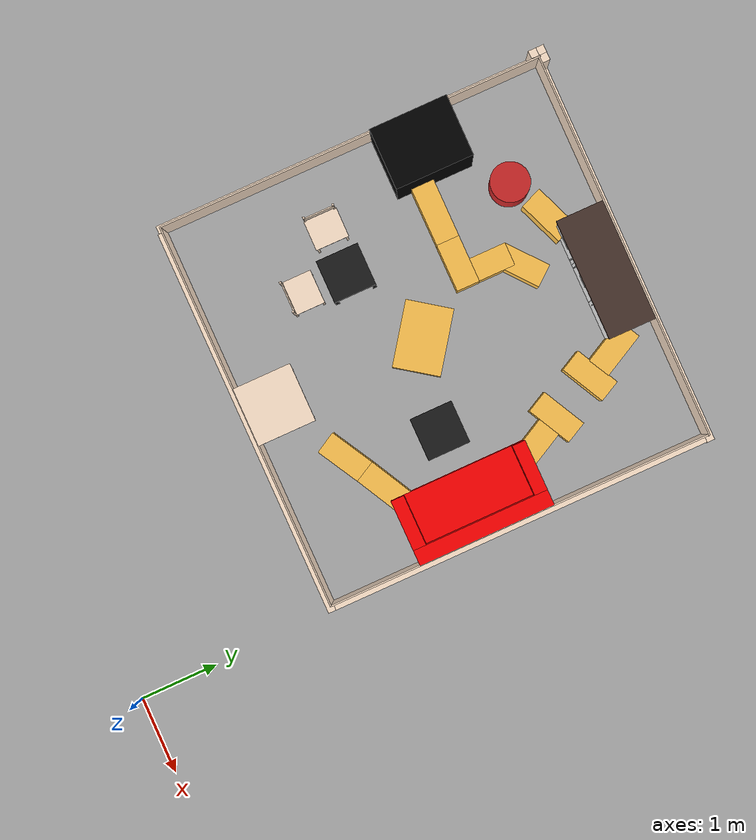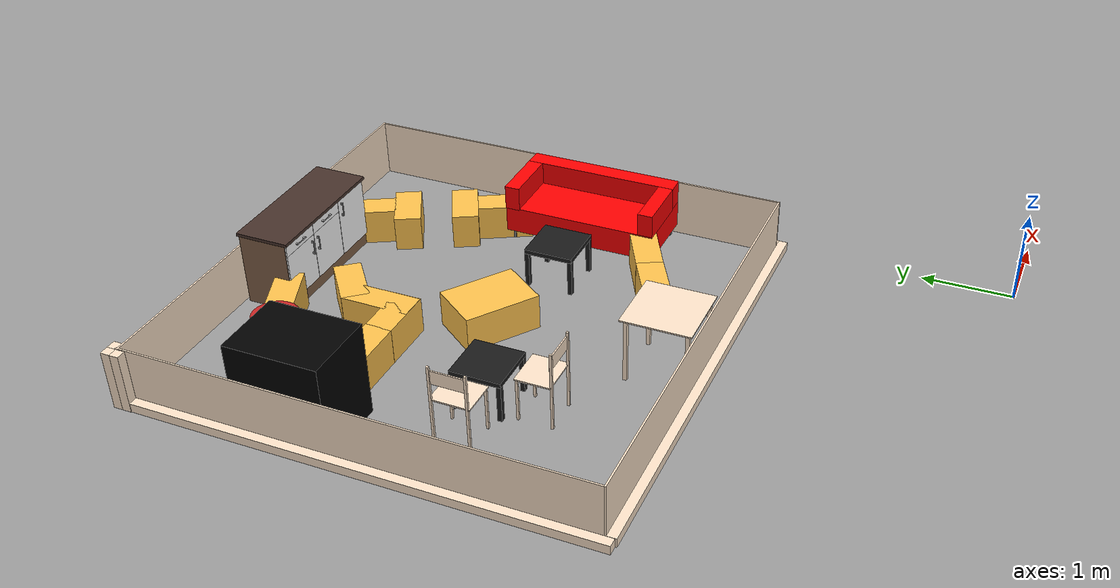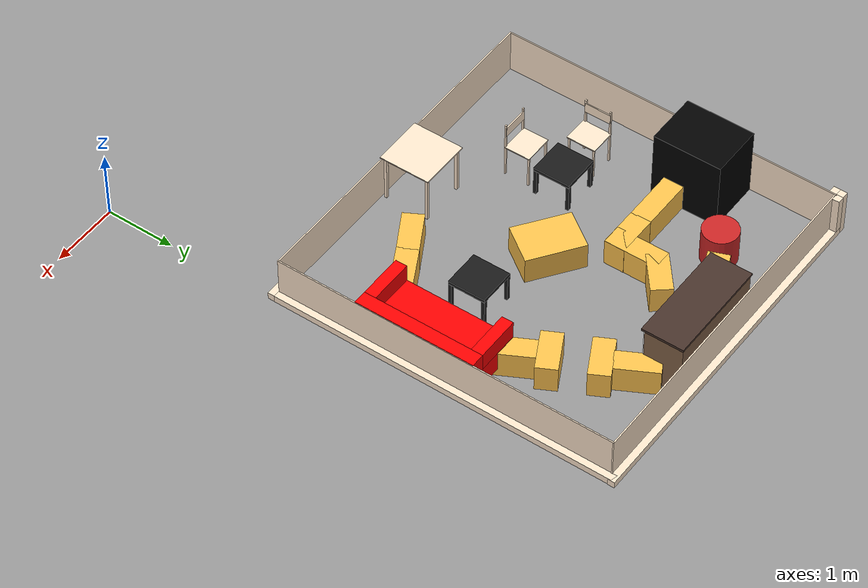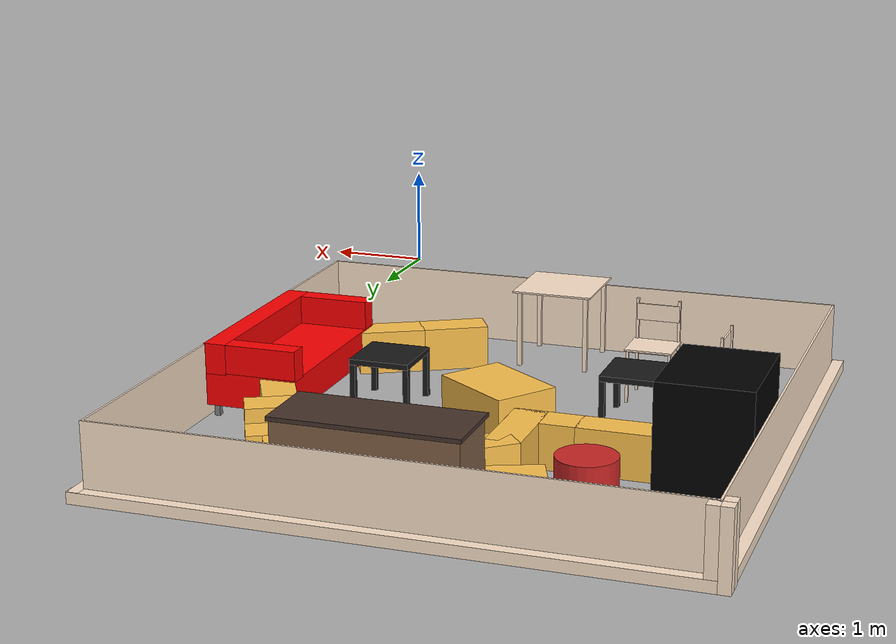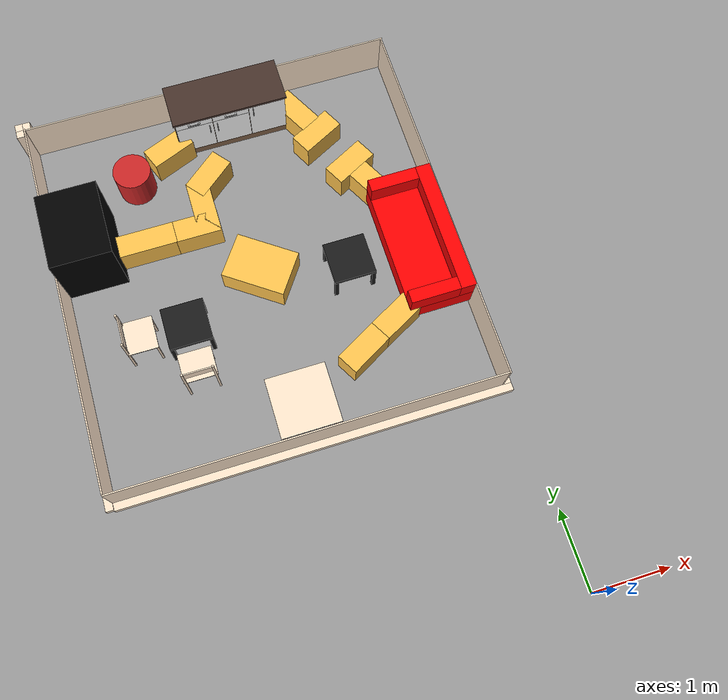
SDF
<sdf version="1.6">
 <model name="amr_arena">
  <link name="dinner-table::1">
   <collision name="dinner-table::1"><geometry><box><size>0.75 0.75 0.015</size></box></geometry></collision>
   <visual name="dinner-table::1">
    <geometry><box><size>0.75 0.75 0.015</size></box></geometry>
    <material><ambient>1 0.9 0.8 1</ambient></material>
   </visual>
   <pose>-2.6 3.02 0.7275 0 -0 1.5708</pose>
  </link>
  <link name="dinner-table::2">
   <collision name="dinner-table::2"><geometry><box><size>0.04 0.04 0.72</size></box></geometry></collision>
   <visual name="dinner-table::2">
    <geometry><box><size>0.04 0.04 0.72</size></box></geometry>
    <material><ambient>1 0.9 0.8 1</ambient></material>
   </visual>
   <pose>-2.28 2.7 0.36 0 -0 1.5708</pose>
  </link>
  <link name="dinner-table::3">
   <collision name="dinner-table::3"><geometry><box><size>0.04 0.04 0.72</size></box></geometry></collision>
   <visual name="dinner-table::3">
    <geometry><box><size>0.04 0.04 0.72</size></box></geometry>
    <material><ambient>1 0.9 0.8 1</ambient></material>
   </visual>
   <pose>-2.28 3.34 0.36 0 -0 1.5708</pose>
  </link>
  <link name="dinner-table::4">
   <collision name="dinner-table::4"><geometry><box><size>0.04 0.04 0.72</size></box></geometry></collision>
   <visual name="dinner-table::4">
    <geometry><box><size>0.04 0.04 0.72</size></box></geometry>
    <material><ambient>1 0.9 0.8 1</ambient></material>
   </visual>
   <pose>-2.92 2.7 0.36 0 -0 1.5708</pose>
  </link>
  <link name="dinner-table::5">
   <collision name="dinner-table::5"><geometry><box><size>0.04 0.04 0.72</size></box></geometry></collision>
   <visual name="dinner-table::5">
    <geometry><box><size>0.04 0.04 0.72</size></box></geometry>
    <material><ambient>1 0.9 0.8 1</ambient></material>
   </visual>
   <pose>-2.92 3.34 0.36 0 -0 1.5708</pose>
  </link>
  <link name="dinner-table::on_top_of"><pose>-2.6 3.02 0 0 -0 1.5708</pose></link>
  <link name="kitchen-counter::1">
   <collision name="kitchen-counter::1"><geometry><box><size>0.555 1.506 0.82</size></box></geometry></collision>
   <visual name="kitchen-counter::1">
    <geometry><box><size>0.555 1.506 0.82</size></box></geometry>
    <material><ambient>0.509 0.38 0.28 1</ambient></material>
   </visual>
   <pose>-2.434 7.3 0.41 0 0 -1.5708</pose>
  </link>
  <link name="kitchen-counter::2">
   <collision name="kitchen-counter::2"><geometry><box><size>0.608 1.54 0.035</size></box></geometry></collision>
   <visual name="kitchen-counter::2">
    <geometry><box><size>0.608 1.54 0.035</size></box></geometry>
    <material><ambient>0.28 0.2 0.17 1</ambient></material>
   </visual>
   <pose>-2.434 7.2865 0.8375 0 0 -1.5708</pose>
  </link>
  <link name="kitchen-counter::3">
   <collision name="kitchen-counter::3">
    <geometry><box><size>0.015 0.495 0.682</size></box></geometry>
   </collision>
   <visual name="kitchen-counter::3">
    <geometry><box><size>0.015 0.495 0.682</size></box></geometry>
    <material><ambient>1 1 1 1</ambient></material>
   </visual>
   <pose>-1.9315 7.015 0.476 0 0 -1.5708</pose>
  </link>
  <link name="kitchen-counter::4">
   <collision name="kitchen-counter::4"><geometry><box><size>0.02 0.01 0.025</size></box></geometry></collision>
   <visual name="kitchen-counter::4">
    <geometry><box><size>0.02 0.01 0.025</size></box></geometry>
    <material><ambient>0.75 0.75 0.75 1</ambient></material>
   </visual>
   <pose>-2.124 6.9975 0.7545 0 0 -1.5708</pose>
  </link>
  <link name="kitchen-counter::5">
   <collision name="kitchen-counter::5"><geometry><box><size>0.02 0.01 0.025</size></box></geometry></collision>
   <visual name="kitchen-counter::5">
    <geometry><box><size>0.02 0.01 0.025</size></box></geometry>
    <material><ambient>0.75 0.75 0.75 1</ambient></material>
   </visual>
   <pose>-2.124 6.9975 0.6175 0 0 -1.5708</pose>
  </link>
  <link name="kitchen-counter::6">
   <collision name="kitchen-counter::6"><geometry><box><size>0.008 0.01 0.162</size></box></geometry></collision>
   <visual name="kitchen-counter::6">
    <geometry><box><size>0.008 0.01 0.162</size></box></geometry>
    <material><ambient>0.75 0.75 0.75 1</ambient></material>
   </visual>
   <pose>-2.124 6.9835 0.686 0 0 -1.5708</pose>
  </link>
  <link name="kitchen-counter::7">
   <collision name="kitchen-counter::7">
    <geometry><box><size>0.015 0.494 0.545</size></box></geometry>
   </collision>
   <visual name="kitchen-counter::7">
    <geometry><box><size>0.015 0.494 0.545</size></box></geometry>
    <material><ambient>1 1 1 1</ambient></material>
   </visual>
   <pose>-2.431 7.015 0.4075 0 0 -1.5708</pose>
  </link>
  <link name="kitchen-counter::8">
   <collision name="kitchen-counter::8"><geometry><box><size>0.02 0.01 0.025</size></box></geometry></collision>
   <visual name="kitchen-counter::8">
    <geometry><box><size>0.02 0.01 0.025</size></box></geometry>
    <material><ambient>0.75 0.75 0.75 1</ambient></material>
   </visual>
   <pose>-2.628 6.9975 0.6175 0 0 -1.5708</pose>
  </link>
  <link name="kitchen-counter::9">
   <collision name="kitchen-counter::9"><geometry><box><size>0.02 0.01 0.025</size></box></geometry></collision>
   <visual name="kitchen-counter::9">
    <geometry><box><size>0.02 0.01 0.025</size></box></geometry>
    <material><ambient>0.75 0.75 0.75 1</ambient></material>
   </visual>
   <pose>-2.628 6.9975 0.4805 0 0 -1.5708</pose>
  </link>
  <link name="kitchen-counter::10">
   <collision name="kitchen-counter::10">
    <geometry><box><size>0.008 0.01 0.162</size></box></geometry>
   </collision>
   <visual name="kitchen-counter::10">
    <geometry><box><size>0.008 0.01 0.162</size></box></geometry>
    <material><ambient>0.75 0.75 0.75 1</ambient></material>
   </visual>
   <pose>-2.628 6.9835 0.549 0 0 -1.5708</pose>
  </link>
  <link name="kitchen-counter::11">
   <collision name="kitchen-counter::11">
    <geometry><box><size>0.015 0.494 0.134</size></box></geometry>
   </collision>
   <visual name="kitchen-counter::11">
    <geometry><box><size>0.015 0.494 0.134</size></box></geometry>
    <material><ambient>1 1 1 1</ambient></material>
   </visual>
   <pose>-2.431 7.015 0.75 0 0 -1.5708</pose>
  </link>
  <link name="kitchen-counter::12">
   <collision name="kitchen-counter::12"><geometry><box><size>0.02 0.025 0.01</size></box></geometry></collision>
   <visual name="kitchen-counter::12">
    <geometry><box><size>0.02 0.025 0.01</size></box></geometry>
    <material><ambient>0.75 0.75 0.75 1</ambient></material>
   </visual>
   <pose>-2.3625 6.9975 0.749 0 0 -1.5708</pose>
  </link>
  <link name="kitchen-counter::13">
   <collision name="kitchen-counter::13"><geometry><box><size>0.02 0.025 0.01</size></box></geometry></collision>
   <visual name="kitchen-counter::13">
    <geometry><box><size>0.02 0.025 0.01</size></box></geometry>
    <material><ambient>0.75 0.75 0.75 1</ambient></material>
   </visual>
   <pose>-2.4995 6.9975 0.749 0 0 -1.5708</pose>
  </link>
  <link name="kitchen-counter::14">
   <collision name="kitchen-counter::14">
    <geometry><box><size>0.008 0.162 0.01</size></box></geometry>
   </collision>
   <visual name="kitchen-counter::14">
    <geometry><box><size>0.008 0.162 0.01</size></box></geometry>
    <material><ambient>0.75 0.75 0.75 1</ambient></material>
   </visual>
   <pose>-2.431 6.9835 0.749 0 0 -1.5708</pose>
  </link>
  <link name="kitchen-counter::15">
   <collision name="kitchen-counter::15">
    <geometry><box><size>0.015 0.494 0.545</size></box></geometry>
   </collision>
   <visual name="kitchen-counter::15">
    <geometry><box><size>0.015 0.494 0.545</size></box></geometry>
    <material><ambient>1 1 1 1</ambient></material>
   </visual>
   <pose>-2.93 7.015 0.4075 0 0 -1.5708</pose>
  </link>
  <link name="kitchen-counter::16">
   <collision name="kitchen-counter::16"><geometry><box><size>0.02 0.01 0.025</size></box></geometry></collision>
   <visual name="kitchen-counter::16">
    <geometry><box><size>0.02 0.01 0.025</size></box></geometry>
    <material><ambient>0.75 0.75 0.75 1</ambient></material>
   </visual>
   <pose>-2.733 6.9975 0.6175 0 0 -1.5708</pose>
  </link>
  <link name="kitchen-counter::17">
   <collision name="kitchen-counter::17"><geometry><box><size>0.02 0.01 0.025</size></box></geometry></collision>
   <visual name="kitchen-counter::17">
    <geometry><box><size>0.02 0.01 0.025</size></box></geometry>
    <material><ambient>0.75 0.75 0.75 1</ambient></material>
   </visual>
   <pose>-2.733 6.9975 0.4805 0 0 -1.5708</pose>
  </link>
  <link name="kitchen-counter::18">
   <collision name="kitchen-counter::18">
    <geometry><box><size>0.008 0.01 0.162</size></box></geometry>
   </collision>
   <visual name="kitchen-counter::18">
    <geometry><box><size>0.008 0.01 0.162</size></box></geometry>
    <material><ambient>0.75 0.75 0.75 1</ambient></material>
   </visual>
   <pose>-2.733 6.9835 0.549 0 0 -1.5708</pose>
  </link>
  <link name="kitchen-counter::19">
   <collision name="kitchen-counter::19">
    <geometry><box><size>0.015 0.494 0.134</size></box></geometry>
   </collision>
   <visual name="kitchen-counter::19">
    <geometry><box><size>0.015 0.494 0.134</size></box></geometry>
    <material><ambient>1 1 1 1</ambient></material>
   </visual>
   <pose>-2.93 7.015 0.75 0 0 -1.5708</pose>
  </link>
  <link name="kitchen-counter::20">
   <collision name="kitchen-counter::20"><geometry><box><size>0.02 0.025 0.01</size></box></geometry></collision>
   <visual name="kitchen-counter::20">
    <geometry><box><size>0.02 0.025 0.01</size></box></geometry>
    <material><ambient>0.75 0.75 0.75 1</ambient></material>
   </visual>
   <pose>-2.8615 6.9975 0.749 0 0 -1.5708</pose>
  </link>
  <link name="kitchen-counter::21">
   <collision name="kitchen-counter::21"><geometry><box><size>0.02 0.025 0.01</size></box></geometry></collision>
   <visual name="kitchen-counter::21">
    <geometry><box><size>0.02 0.025 0.01</size></box></geometry>
    <material><ambient>0.75 0.75 0.75 1</ambient></material>
   </visual>
   <pose>-2.9985 6.9975 0.749 0 0 -1.5708</pose>
  </link>
  <link name="kitchen-counter::22">
   <collision name="kitchen-counter::22">
    <geometry><box><size>0.008 0.162 0.01</size></box></geometry>
   </collision>
   <visual name="kitchen-counter::22">
    <geometry><box><size>0.008 0.162 0.01</size></box></geometry>
    <material><ambient>0.75 0.75 0.75 1</ambient></material>
   </visual>
   <pose>-2.93 6.9835 0.749 0 0 -1.5708</pose>
  </link>
  <link name="kitchen-counter::on_top_of"><pose>-2.434 7.3 0 0 0 -1.5708</pose></link>
  <link name="couch-table::1">
   <collision name="couch-table::1"><geometry><box><size>0.55 0.55 0.05</size></box></geometry></collision>
   <visual name="couch-table::1">
    <geometry><box><size>0.55 0.55 0.05</size></box></geometry>
    <material><ambient>0.1 0.1 0.1 1</ambient></material>
   </visual>
   <pose>-1.5 4.7 0.425 0 -0 -3.13819</pose>
  </link>
  <link name="couch-table::2">
   <collision name="couch-table::2"><geometry><box><size>0.05 0.05 0.4</size></box></geometry></collision>
   <visual name="couch-table::2">
    <geometry><box><size>0.05 0.05 0.4</size></box></geometry>
    <material><ambient>0.1 0.1 0.1 1</ambient></material>
   </visual>
   <pose>-1.25085 4.95085 0.2 0 -0 -3.13819</pose>
  </link>
  <link name="couch-table::3">
   <collision name="couch-table::3"><geometry><box><size>0.05 0.05 0.4</size></box></geometry></collision>
   <visual name="couch-table::3">
    <geometry><box><size>0.05 0.05 0.4</size></box></geometry>
    <material><ambient>0.1 0.1 0.1 1</ambient></material>
   </visual>
   <pose>-1.75085 4.94915 0.2 0 -0 -3.13819</pose>
  </link>
  <link name="couch-table::4">
   <collision name="couch-table::4"><geometry><box><size>0.05 0.05 0.4</size></box></geometry></collision>
   <visual name="couch-table::4">
    <geometry><box><size>0.05 0.05 0.4</size></box></geometry>
    <material><ambient>0.1 0.1 0.1 1</ambient></material>
   </visual>
   <pose>-1.24915 4.45085 0.2 0 -0 -3.13819</pose>
  </link>
  <link name="couch-table::5">
   <collision name="couch-table::5"><geometry><box><size>0.05 0.05 0.4</size></box></geometry></collision>
   <visual name="couch-table::5">
    <geometry><box><size>0.05 0.05 0.4</size></box></geometry>
    <material><ambient>0.1 0.1 0.1 1</ambient></material>
   </visual>
   <pose>-1.74915 4.44915 0.2 0 -0 -3.13819</pose>
  </link>
  <link name="couch-table::on_top_of"><pose>-1.5 4.7 0 0 -0 -3.13819</pose></link>
  <link name="couch-table::in_front_of"><pose>-1.5 4.7 0 0 -0 -3.13819</pose></link>
  <link name="sofa::1">
   <collision name="sofa::1"><geometry><box><size>0.05 0.05 0.11</size></box></geometry></collision>
   <visual name="sofa::1">
    <geometry><box><size>0.05 0.05 0.11</size></box></geometry>
    <material><ambient>0.5 0.5 0.5 1</ambient></material>
   </visual>
   <pose>-0.207779 5.51617 0.055 0 -0 -3.13819</pose>
  </link>
  <link name="sofa::2">
   <collision name="sofa::2"><geometry><box><size>0.05 0.05 0.11</size></box></geometry></collision>
   <visual name="sofa::2">
    <geometry><box><size>0.05 0.05 0.11</size></box></geometry>
    <material><ambient>0.5 0.5 0.5 1</ambient></material>
   </visual>
   <pose>-0.202225 3.88618 0.055 0 -0 -3.13819</pose>
  </link>
  <link name="sofa::3">
   <collision name="sofa::3"><geometry><box><size>0.05 0.05 0.11</size></box></geometry></collision>
   <visual name="sofa::3">
    <geometry><box><size>0.05 0.05 0.11</size></box></geometry>
    <material><ambient>0.5 0.5 0.5 1</ambient></material>
   </visual>
   <pose>-0.912221 3.88376 0.055 0 -0 -3.13819</pose>
  </link>
  <link name="sofa::4">
   <collision name="sofa::4"><geometry><box><size>0.05 0.05 0.11</size></box></geometry></collision>
   <visual name="sofa::4">
    <geometry><box><size>0.05 0.05 0.11</size></box></geometry>
    <material><ambient>0.5 0.5 0.5 1</ambient></material>
   </visual>
   <pose>-0.917775 5.51375 0.055 0 -0 -3.13819</pose>
  </link>
  <link name="sofa::5">
   <collision name="sofa::5"><geometry><box><size>0.85 1.77 0.3</size></box></geometry></collision>
   <visual name="sofa::5">
    <geometry><box><size>0.85 1.77 0.3</size></box></geometry>
    <material><ambient>1 0 0 1</ambient></material>
   </visual>
   <pose>-0.55 4.7 0.26 0 -0 -3.13819</pose>
  </link>
  <link name="sofa::6">
   <collision name="sofa::6"><geometry><box><size>0.2 1.77 0.275</size></box></geometry></collision>
   <visual name="sofa::6">
    <geometry><box><size>0.2 1.77 0.275</size></box></geometry>
    <material><ambient>1 0 0 1</ambient></material>
   </visual>
   <pose>-0.225002 4.70111 0.5325 0 -0 -3.13819</pose>
  </link>
  <link name="sofa::7">
   <collision name="sofa::7"><geometry><box><size>0.65 0.17 0.275</size></box></geometry></collision>
   <visual name="sofa::7">
    <geometry><box><size>0.65 0.17 0.275</size></box></geometry>
    <material><ambient>1 0 0 1</ambient></material>
   </visual>
   <pose>-0.652725 5.49965 0.5325 0 -0 -3.13819</pose>
  </link>
  <link name="sofa::8">
   <collision name="sofa::8"><geometry><box><size>0.65 0.17 0.275</size></box></geometry></collision>
   <visual name="sofa::8">
    <geometry><box><size>0.65 0.17 0.275</size></box></geometry>
    <material><ambient>1 0 0 1</ambient></material>
   </visual>
   <pose>-0.647274 3.89966 0.5325 0 -0 -3.13819</pose>
  </link>
  <link name="sofa::on_top_of"><pose>-0.55 4.7 0 0 -0 -3.13819</pose></link>
  <link name="kitchen-sink::1">
   <collision name="kitchen-sink::1"><geometry><box><size>0.78 1 1.03</size></box></geometry></collision>
   <visual name="kitchen-sink::1">
    <geometry><box><size>0.78 1 1.03</size></box></geometry>
    <material><ambient>0 0 0 1</ambient></material>
   </visual>
   <pose>-4.7 5.9 0.515 0 -0 0</pose>
  </link>
  <link name="kitchen-sink::on_top_of"><pose>-4.7 5.9 0 0 -0 0</pose></link>
  <link name="boundary-right::1">
   <collision name="boundary-right::1"><geometry><box><size>5.1 0.1 0.1</size></box></geometry></collision>
   <visual name="boundary-right::1">
    <geometry><box><size>5.1 0.1 0.1</size></box></geometry>
    <material><ambient>1 0.9 0.8 1</ambient></material>
   </visual>
   <pose>-2.565 2.582 0.05 0 -0 0</pose>
  </link>
  <link name="boundary-right::2">
   <collision name="boundary-right::2"><geometry><box><size>5 0.018 0.655</size></box></geometry></collision>
   <visual name="boundary-right::2">
    <geometry><box><size>5 0.018 0.655</size></box></geometry>
    <material><ambient>1 0.9 0.8 1</ambient></material>
   </visual>
   <pose>-2.615 2.641 0.3325 0 -0 0</pose>
  </link>
  <link name="boundary-left::1">
   <collision name="boundary-left::1"><geometry><box><size>5.1 0.1 0.1</size></box></geometry></collision>
   <visual name="boundary-left::1">
    <geometry><box><size>5.1 0.1 0.1</size></box></geometry>
    <material><ambient>1 0.9 0.8 1</ambient></material>
   </visual>
   <pose>-2.565 7.686 0.05 0 -0 0</pose>
  </link>
  <link name="boundary-left::2">
   <collision name="boundary-left::2"><geometry><box><size>0.1 0.1 0.555</size></box></geometry></collision>
   <visual name="boundary-left::2">
    <geometry><box><size>0.1 0.1 0.555</size></box></geometry>
    <material><ambient>1 0.9 0.8 1</ambient></material>
   </visual>
   <pose>-5.065 7.686 0.3775 0 -0 0</pose>
  </link>
  <link name="boundary-left::3">
   <collision name="boundary-left::3"><geometry><box><size>0.1 0.1 0.655</size></box></geometry></collision>
   <visual name="boundary-left::3">
    <geometry><box><size>0.1 0.1 0.655</size></box></geometry>
    <material><ambient>1 0.9 0.8 1</ambient></material>
   </visual>
   <pose>-5.165 7.686 0.3275 0 -0 0</pose>
  </link>
  <link name="boundary-left::4">
   <collision name="boundary-left::4"><geometry><box><size>0.1 0.1 0.655</size></box></geometry></collision>
   <visual name="boundary-left::4">
    <geometry><box><size>0.1 0.1 0.655</size></box></geometry>
    <material><ambient>1 0.9 0.8 1</ambient></material>
   </visual>
   <pose>-5.165 7.586 0.3275 0 -0 0</pose>
  </link>
  <link name="boundary-left::5">
   <collision name="boundary-left::5"><geometry><box><size>5 0.018 0.655</size></box></geometry></collision>
   <visual name="boundary-left::5">
    <geometry><box><size>5 0.018 0.655</size></box></geometry>
    <material><ambient>1 0.9 0.8 1</ambient></material>
   </visual>
   <pose>-2.615 7.627 0.3325 0 -0 0</pose>
  </link>
  <link name="boundary-front::1">
   <collision name="boundary-front::1"><geometry><box><size>5.1 0.1 0.1</size></box></geometry></collision>
   <visual name="boundary-front::1">
    <geometry><box><size>5.1 0.1 0.1</size></box></geometry>
    <material><ambient>1 0.9 0.8 1</ambient></material>
   </visual>
   <pose>-5.16366 5.10011 0.05 0 0 -1.5725</pose>
  </link>
  <link name="boundary-front::2">
   <collision name="boundary-front::2"><geometry><box><size>5 0.018 0.655</size></box></geometry></collision>
   <visual name="boundary-front::2">
    <geometry><box><size>5 0.018 0.655</size></box></geometry>
    <material><ambient>1 0.9 0.8 1</ambient></material>
   </visual>
   <pose>-5.10457 5.15001 0.3325 0 0 -1.5725</pose>
  </link>
  <link name="boundary-back::1">
   <collision name="boundary-back::1"><geometry><box><size>5.1 0.1 0.1</size></box></geometry></collision>
   <visual name="boundary-back::1">
    <geometry><box><size>5.1 0.1 0.1</size></box></geometry>
    <material><ambient>1 0.9 0.8 1</ambient></material>
   </visual>
   <pose>-0.067656 5.18012 0.05 0 -0 1.5725</pose>
  </link>
  <link name="boundary-back::2">
   <collision name="boundary-back::2"><geometry><box><size>5 0.018 0.655</size></box></geometry></collision>
   <visual name="boundary-back::2">
    <geometry><box><size>5 0.018 0.655</size></box></geometry>
    <material><ambient>1 0.9 0.8 1</ambient></material>
   </visual>
   <pose>-0.12657 5.13002 0.3325 0 -0 1.5725</pose>
  </link>
  <link name="couch-table-1::1">
   <collision name="couch-table-1::1"><geometry><box><size>0.55 0.55 0.05</size></box></geometry></collision>
   <visual name="couch-table-1::1">
    <geometry><box><size>0.55 0.55 0.05</size></box></geometry>
    <material><ambient>0.1 0.1 0.1 1</ambient></material>
   </visual>
   <pose>-3.7085 4.449 0.425 0 -0 0</pose>
  </link>
  <link name="couch-table-1::2">
   <collision name="couch-table-1::2"><geometry><box><size>0.05 0.05 0.4</size></box></geometry></collision>
   <visual name="couch-table-1::2">
    <geometry><box><size>0.05 0.05 0.4</size></box></geometry>
    <material><ambient>0.1 0.1 0.1 1</ambient></material>
   </visual>
   <pose>-3.9585 4.199 0.2 0 -0 0</pose>
  </link>
  <link name="couch-table-1::3">
   <collision name="couch-table-1::3"><geometry><box><size>0.05 0.05 0.4</size></box></geometry></collision>
   <visual name="couch-table-1::3">
    <geometry><box><size>0.05 0.05 0.4</size></box></geometry>
    <material><ambient>0.1 0.1 0.1 1</ambient></material>
   </visual>
   <pose>-3.4585 4.199 0.2 0 -0 0</pose>
  </link>
  <link name="couch-table-1::4">
   <collision name="couch-table-1::4"><geometry><box><size>0.05 0.05 0.4</size></box></geometry></collision>
   <visual name="couch-table-1::4">
    <geometry><box><size>0.05 0.05 0.4</size></box></geometry>
    <material><ambient>0.1 0.1 0.1 1</ambient></material>
   </visual>
   <pose>-3.9585 4.699 0.2 0 -0 0</pose>
  </link>
  <link name="couch-table-1::5">
   <collision name="couch-table-1::5"><geometry><box><size>0.05 0.05 0.4</size></box></geometry></collision>
   <visual name="couch-table-1::5">
    <geometry><box><size>0.05 0.05 0.4</size></box></geometry>
    <material><ambient>0.1 0.1 0.1 1</ambient></material>
   </visual>
   <pose>-3.4585 4.699 0.2 0 -0 0</pose>
  </link>
  <link name="couch-table-1::on_top_of"><pose>-3.7085 4.449 0 0 -0 0</pose></link>
  <link name="couch-table-1::in_front_of"><pose>-3.7085 4.449 0 0 -0 0</pose></link>
  <link name="chair_0::1">
   <pose>-3.88927 4.05 0.24 0 -0 0</pose>
   <collision name="chair_0::1"><geometry><box><size>0.025 0.025 0.48</size></box></geometry></collision>
   <visual name="chair_0::1">
    <geometry><box><size>0.025 0.025 0.48</size></box></geometry>
    <material><ambient>1 0.9 0.8 1</ambient></material>
   </visual>
  </link>
  <link name="chair_0::2">
   <pose>-3.50927 4.05 0.24 0 -0 0</pose>
   <collision name="chair_0::2"><geometry><box><size>0.025 0.025 0.48</size></box></geometry></collision>
   <visual name="chair_0::2">
    <geometry><box><size>0.025 0.025 0.48</size></box></geometry>
    <material><ambient>1 0.9 0.8 1</ambient></material>
   </visual>
  </link>
  <link name="chair_0::3">
   <pose>-3.88927 3.69 0.435 0 -0 0</pose>
   <collision name="chair_0::3"><geometry><box><size>0.025 0.025 0.87</size></box></geometry></collision>
   <visual name="chair_0::3">
    <geometry><box><size>0.025 0.025 0.87</size></box></geometry>
    <material><ambient>1 0.9 0.8 1</ambient></material>
   </visual>
  </link>
  <link name="chair_0::4">
   <pose>-3.50927 3.69 0.435 0 -0 0</pose>
   <collision name="chair_0::4"><geometry><box><size>0.025 0.025 0.87</size></box></geometry></collision>
   <visual name="chair_0::4">
    <geometry><box><size>0.025 0.025 0.87</size></box></geometry>
    <material><ambient>1 0.9 0.8 1</ambient></material>
   </visual>
  </link>
  <link name="chair_0::5">
   <pose>-3.69927 3.88 0.4875 0 -0 0</pose>
   <collision name="chair_0::5"><geometry><box><size>0.38 0.43 0.015</size></box></geometry></collision>
   <visual name="chair_0::5">
    <geometry><box><size>0.43 0.38 0.015</size></box></geometry>
    <material><ambient>1 0.9 0.8 1</ambient></material>
   </visual>
  </link>
  <link name="chair_0::6">
   <pose>-3.69927 3.7 0.75 1.5775 -0 0</pose>
   <collision name="chair_0::6"><geometry><box><size>0.39 0.15 0.015</size></box></geometry></collision>
   <visual name="chair_0::6">
    <geometry><box><size>0.39 0.15 0.015</size></box></geometry>
    <material><ambient>1 0.9 0.8 1</ambient></material>
   </visual>
  </link>
  <link name="chair_1::1">
   <pose>-4.11473 4.63886 0.24 0 0 -1.5775</pose>
   <collision name="chair_1::1"><geometry><box><size>0.025 0.025 0.48</size></box></geometry></collision>
   <visual name="chair_1::1">
    <geometry><box><size>0.025 0.025 0.48</size></box></geometry>
    <material><ambient>1 0.9 0.8 1</ambient></material>
   </visual>
  </link>
  <link name="chair_1::2">
   <pose>-4.11728 4.25887 0.24 0 0 -1.5775</pose>
   <collision name="chair_1::2"><geometry><box><size>0.025 0.025 0.48</size></box></geometry></collision>
   <visual name="chair_1::2">
    <geometry><box><size>0.025 0.025 0.48</size></box></geometry>
    <material><ambient>1 0.9 0.8 1</ambient></material>
   </visual>
  </link>
  <link name="chair_1::3">
   <pose>-4.47472 4.64127 0.435 0 0 -1.5775</pose>
   <collision name="chair_1::3"><geometry><box><size>0.025 0.025 0.87</size></box></geometry></collision>
   <visual name="chair_1::3">
    <geometry><box><size>0.025 0.025 0.87</size></box></geometry>
    <material><ambient>1 0.9 0.8 1</ambient></material>
   </visual>
  </link>
  <link name="chair_1::4">
   <pose>-4.47727 4.26128 0.435 0 0 -1.5775</pose>
   <collision name="chair_1::4"><geometry><box><size>0.025 0.025 0.87</size></box></geometry></collision>
   <visual name="chair_1::4">
    <geometry><box><size>0.025 0.025 0.87</size></box></geometry>
    <material><ambient>1 0.9 0.8 1</ambient></material>
   </visual>
  </link>
  <link name="chair_1::5">
   <pose>-4.286 4.45 0.4875 0 0 -1.5775</pose>
   <collision name="chair_1::5"><geometry><box><size>0.38 0.43 0.015</size></box></geometry></collision>
   <visual name="chair_1::5">
    <geometry><box><size>0.43 0.38 0.015</size></box></geometry>
    <material><ambient>1 0.9 0.8 1</ambient></material>
   </visual>
  </link>
  <link name="chair_1::6">
   <pose>-4.466 4.45121 0.75 1.5775 -0 -1.5775</pose>
   <collision name="chair_1::6"><geometry><box><size>0.39 0.15 0.015</size></box></geometry></collision>
   <visual name="chair_1::6">
    <geometry><box><size>0.39 0.15 0.015</size></box></geometry>
    <material><ambient>1 0.9 0.8 1</ambient></material>
   </visual>
  </link>
  <link name="box_0::box">
   <pose>-2.61 4.978 0.1985 0 0 -0.62</pose>
   <inertial>
    <mass>5</mass>
    <inertia><ixx>0.2157</ixx><iyy>0.3597</iyy><izz>0.444</izz><ixy>0</ixy><ixz>0</ixz><iyz>0</iyz></inertia>
   </inertial>
   <collision name="box_collision"><geometry><box><size>0.84 0.6 0.397</size></box></geometry></collision>
   <visual name="box_visual">
    <geometry><box><size>0.84 0.6 0.397</size></box></geometry>
    <material>
     <script><uri>file://media/materials/scripts/gazebo.material</uri><name>Gazebo/Grey</name></script>
     <ambient>1 0.764706 0.305882 1</ambient>
    </material>
   </visual>
  </link>
  <static>1</static>
  <link name="box_1::box">
   <pose>-3.26 5.73599 0.1985 0 -0 0</pose>
   <inertial>
    <mass>5</mass>
    <inertia><ixx>0.1022</ixx><iyy>0.2197</iyy><izz>0.1905</izz><ixy>0</ixy><ixz>0</ixz><iyz>0</iyz></inertia>
   </inertial>
   <collision name="box_collision"><geometry><box><size>0.608 0.296 0.397</size></box></geometry></collision>
   <visual name="box_visual">
    <geometry><box><size>0.608 0.296 0.397</size></box></geometry>
    <material>
     <script><uri>file://media/materials/scripts/gazebo.material</uri><name>Gazebo/Grey</name></script>
     <ambient>1 0.764706 0.305882 1</ambient>
    </material>
   </visual>
  </link>
  <static>1</static>
  <link name="box_2::box">
   <pose>-3.9345 5.73599 0.1985 0 -0 1.5725</pose>
   <inertial>
    <mass>7</mass>
    <inertia><ixx>0.3089</ixx><iyy>0.1022</iyy><izz>0.2797</izz><ixy>0</ixy><ixz>0</ixz><iyz>0</iyz></inertia>
   </inertial>
   <collision name="box_collision"><geometry><box><size>0.296 0.764 0.397</size></box></geometry></collision>
   <visual name="box_visual">
    <geometry><box><size>0.296 0.764 0.397</size></box></geometry>
    <material>
     <script><uri>file://media/materials/scripts/gazebo.material</uri><name>Gazebo/Grey</name></script>
     <ambient>1 0.764706 0.305882 1</ambient>
    </material>
   </visual>
  </link>
  <static>1</static>
  <link name="box_3::box">
   <pose>-3.107 5.97458 0.1985 0 -0 0</pose>
   <inertial>
    <mass>7</mass>
    <inertia><ixx>0.3089</ixx><iyy>0.1022</iyy><izz>0.2797</izz><ixy>0</ixy><ixz>0</ixz><iyz>0</iyz></inertia>
   </inertial>
   <collision name="box_collision"><geometry><box><size>0.296 0.764 0.397</size></box></geometry></collision>
   <visual name="box_visual">
    <geometry><box><size>0.296 0.764 0.397</size></box></geometry>
    <material>
     <script><uri>file://media/materials/scripts/gazebo.material</uri><name>Gazebo/Grey</name></script>
     <ambient>1 0.764706 0.305882 1</ambient>
    </material>
   </visual>
  </link>
  <static>1</static>
  <link name="box_4::box">
   <pose>-2.9269 6.43493 0.1985 0 -0 0.685141</pose>
   <inertial>
    <mass>5</mass>
    <inertia><ixx>0.1022</ixx><iyy>0.2197</iyy><izz>0.1905</izz><ixy>0</ixy><ixz>0</ixz><iyz>0</iyz></inertia>
   </inertial>
   <collision name="box_collision"><geometry><box><size>0.608 0.296 0.397</size></box></geometry></collision>
   <visual name="box_visual">
    <geometry><box><size>0.608 0.296 0.397</size></box></geometry>
    <material>
     <script><uri>file://media/materials/scripts/gazebo.material</uri><name>Gazebo/Grey</name></script>
     <ambient>1 0.764706 0.305882 1</ambient>
    </material>
   </visual>
  </link>
  <static>1</static>
  <link name="box_5::box">
   <pose>-1.15523 3.80913 0.1985 0 -0 0.489311</pose>
   <inertial>
    <mass>5</mass>
    <inertia><ixx>0.1022</ixx><iyy>0.2197</iyy><izz>0.1905</izz><ixy>0</ixy><ixz>0</ixz><iyz>0</iyz></inertia>
   </inertial>
   <collision name="box_collision"><geometry><box><size>0.608 0.296 0.397</size></box></geometry></collision>
   <visual name="box_visual">
    <geometry><box><size>0.608 0.296 0.397</size></box></geometry>
    <material>
     <script><uri>file://media/materials/scripts/gazebo.material</uri><name>Gazebo/Grey</name></script>
     <ambient>1 0.764706 0.305882 1</ambient>
    </material>
   </visual>
  </link>
  <static>1</static>
  <link name="box_6::box">
   <pose>-1.67782 3.52268 0.1985 0 -0 0.511462</pose>
   <inertial>
    <mass>5</mass>
    <inertia><ixx>0.1022</ixx><iyy>0.2197</iyy><izz>0.1905</izz><ixy>0</ixy><ixz>0</ixz><iyz>0</iyz></inertia>
   </inertial>
   <collision name="box_collision"><geometry><box><size>0.608 0.296 0.397</size></box></geometry></collision>
   <visual name="box_visual">
    <geometry><box><size>0.608 0.296 0.397</size></box></geometry>
    <material>
     <script><uri>file://media/materials/scripts/gazebo.material</uri><name>Gazebo/Grey</name></script>
     <ambient>1 0.764706 0.305882 1</ambient>
    </material>
   </visual>
  </link>
  <static>1</static>
  <link name="box_7::box">
   <pose>-3.33939 6.98088 0.1985 0 -0 0.379408</pose>
   <inertial>
    <mass>5</mass>
    <inertia><ixx>0.1022</ixx><iyy>0.2197</iyy><izz>0.1905</izz><ixy>0</ixy><ixz>0</ixz><iyz>0</iyz></inertia>
   </inertial>
   <collision name="box_collision"><geometry><box><size>0.608 0.296 0.397</size></box></geometry></collision>
   <visual name="box_visual">
    <geometry><box><size>0.608 0.296 0.397</size></box></geometry>
    <material>
     <script><uri>file://media/materials/scripts/gazebo.material</uri><name>Gazebo/Grey</name></script>
     <ambient>1 0.764706 0.305882 1</ambient>
    </material>
   </visual>
  </link>
  <static>1</static>
  <link name="box_8::box">
   <pose>-1.54 7.03977 0.1985 0 0 -1.08329</pose>
   <inertial>
    <mass>5</mass>
    <inertia><ixx>0.1022</ixx><iyy>0.2197</iyy><izz>0.1905</izz><ixy>0</ixy><ixz>0</ixz><iyz>0</iyz></inertia>
   </inertial>
   <collision name="box_collision"><geometry><box><size>0.608 0.296 0.397</size></box></geometry></collision>
   <visual name="box_visual">
    <geometry><box><size>0.608 0.296 0.397</size></box></geometry>
    <material>
     <script><uri>file://media/materials/scripts/gazebo.material</uri><name>Gazebo/Grey</name></script>
     <ambient>1 0.764706 0.305882 1</ambient>
    </material>
   </visual>
  </link>
  <static>1</static>
  <link name="box_9::box">
   <pose>-1.35708 6.63676 0.1985 0 -0 0.48</pose>
   <inertial>
    <mass>5</mass>
    <inertia><ixx>0.1022</ixx><iyy>0.2197</iyy><izz>0.1905</izz><ixy>0</ixy><ixz>0</ixz><iyz>0</iyz></inertia>
   </inertial>
   <collision name="box_collision"><geometry><box><size>0.608 0.296 0.397</size></box></geometry></collision>
   <visual name="box_visual">
    <geometry><box><size>0.608 0.296 0.397</size></box></geometry>
    <material>
     <script><uri>file://media/materials/scripts/gazebo.material</uri><name>Gazebo/Grey</name></script>
     <ambient>1 0.764706 0.305882 1</ambient>
    </material>
   </visual>
  </link>
  <static>1</static>
  <link name="box_10::box">
   <pose>-1.06677 6.0595 0.1985 0 -0 0.48</pose>
   <inertial>
    <mass>5</mass>
    <inertia><ixx>0.1022</ixx><iyy>0.2197</iyy><izz>0.1905</izz><ixy>0</ixy><ixz>0</ixz><iyz>0</iyz></inertia>
   </inertial>
   <collision name="box_collision"><geometry><box><size>0.608 0.296 0.397</size></box></geometry></collision>
   <visual name="box_visual">
    <geometry><box><size>0.608 0.296 0.397</size></box></geometry>
    <material>
     <script><uri>file://media/materials/scripts/gazebo.material</uri><name>Gazebo/Grey</name></script>
     <ambient>1 0.764706 0.305882 1</ambient>
    </material>
   </visual>
  </link>
  <static>1</static>
  <link name="box_11::box">
   <pose>-0.855085 5.66238 0.1985 0 0 -1.08329</pose>
   <inertial>
    <mass>5</mass>
    <inertia><ixx>0.1022</ixx><iyy>0.2197</iyy><izz>0.1905</izz><ixy>0</ixy><ixz>0</ixz><iyz>0</iyz></inertia>
   </inertial>
   <collision name="box_collision"><geometry><box><size>0.608 0.296 0.397</size></box></geometry></collision>
   <visual name="box_visual">
    <geometry><box><size>0.608 0.296 0.397</size></box></geometry>
    <material>
     <script><uri>file://media/materials/scripts/gazebo.material</uri><name>Gazebo/Grey</name></script>
     <ambient>1 0.764706 0.305882 1</ambient>
    </material>
   </visual>
  </link>
  <static>1</static>
  <link name="cylinder_1_link">
   <pose>-3.8886 6.71 0.25 0 -0 0</pose>
   <collision name="cylinder_1_collision">
    <geometry><cylinder><radius>0.25</radius><length>0.5</length></cylinder></geometry>
   </collision>
   <visual name="cylinder_1_visual">
    <geometry><cylinder><radius>0.25</radius><length>0.5</length></cylinder></geometry>
    <material>
     <script><uri>file://media/materials/scripts/gazebo.material</uri><name>Gazebo/Red</name></script>
     <ambient>1 0.764706 0.305882 1</ambient>
    </material>
   </visual>
  </link>
 </model>
</sdf>
